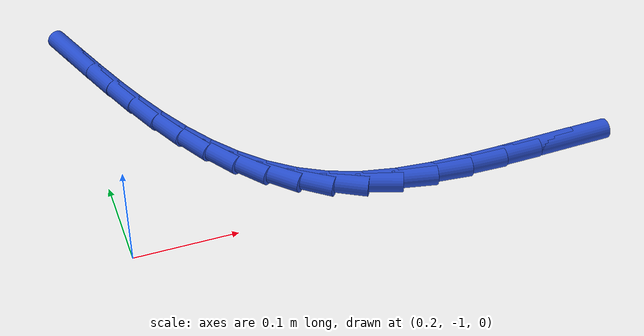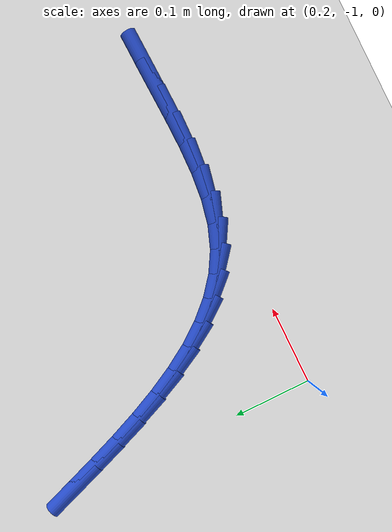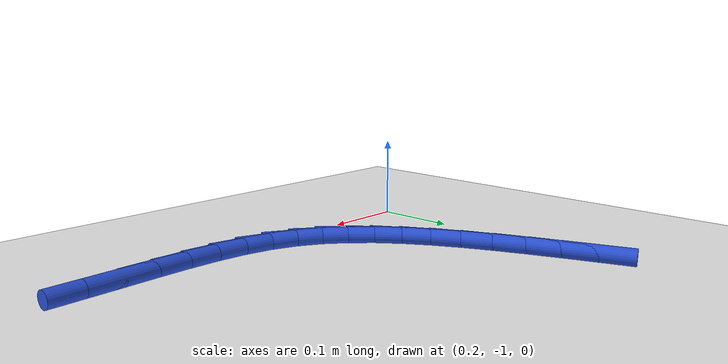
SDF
<sdf version="1.6">
 <world name="default">
  <model name="ground_plane">
   <static>1</static>
   <link name="link">
    <collision name="collision">
     <geometry><plane><normal>0 0 1</normal><size>100 100</size></plane></geometry>
     <surface><friction><ode><mu>100</mu><mu2>50</mu2></ode></friction></surface>
    </collision>
    <visual name="visual">
     <cast_shadows>0</cast_shadows>
     <geometry><plane><normal>0 0 1</normal><size>100 100</size></plane></geometry>
     <material>
      <script><uri>file://media/materials/scripts/gazebo.material</uri><name>Gazebo/WhiteGlow</name></script>
     </material>
    </visual>
   </link>
  </model>
  <model name="line">
   <link name="link_183">
    <pose>0.6492458676823791 -0.9888403708924518 0.01 0 1.57 0.03428825083666882</pose>
    <collision name="collision">
     <geometry><cylinder><radius>0.01</radius><length>0.08</length></cylinder></geometry>
    </collision>
    <visual name="visual">
     <material>
      <script><name>Gazebo/Blue</name><uri>file://media/materials/scripts/gazebo.material</uri></script>
     </material>
     <geometry><cylinder><radius>0.01</radius><length>0.08</length></cylinder></geometry>
    </visual>
   </link>
   <link name="link_184">
    <pose>0.6102170524285628 -0.990179125391672 0.01 0 1.57 0.03857880957535048</pose>
    <collision name="collision">
     <geometry><cylinder><radius>0.01</radius><length>0.08</length></cylinder></geometry>
    </collision>
    <visual name="visual">
     <material>
      <script><name>Gazebo/Blue</name><uri>file://media/materials/scripts/gazebo.material</uri></script>
     </material>
     <geometry><cylinder><radius>0.01</radius><length>0.08</length></cylinder></geometry>
    </visual>
   </link>
   <link name="link_185">
    <pose>0.5713773164902005 -0.9916782599751337 0.01 0 1.57 0.02001904037055023</pose>
    <collision name="collision">
     <geometry><cylinder><radius>0.01</radius><length>0.08</length></cylinder></geometry>
    </collision>
    <visual name="visual">
     <material>
      <script><name>Gazebo/Blue</name><uri>file://media/materials/scripts/gazebo.material</uri></script>
     </material>
     <geometry><cylinder><radius>0.01</radius><length>0.08</length></cylinder></geometry>
    </visual>
   </link>
   <link name="link_186">
    <pose>0.5332447967662048 -0.9924417384206881 0.01 0 1.57 -0.02351992562575336</pose>
    <collision name="collision">
     <geometry><cylinder><radius>0.01</radius><length>0.08</length></cylinder></geometry>
    </collision>
    <visual name="visual">
     <material>
      <script><name>Gazebo/Blue</name><uri>file://media/materials/scripts/gazebo.material</uri></script>
     </material>
     <geometry><cylinder><radius>0.01</radius><length>0.08</length></cylinder></geometry>
    </visual>
   </link>
   <link name="link_187">
    <pose>0.4963376301554926 -0.9915735245061873 0.01 0 1.57 -0.09627671990491682</pose>
    <collision name="collision">
     <geometry><cylinder><radius>0.01</radius><length>0.08</length></cylinder></geometry>
    </collision>
    <visual name="visual">
     <material>
      <script><name>Gazebo/Blue</name><uri>file://media/materials/scripts/gazebo.material</uri></script>
     </material>
     <geometry><cylinder><radius>0.01</radius><length>0.08</length></cylinder></geometry>
    </visual>
   </link>
   <link name="link_188">
    <pose>0.46117395355697693 -0.9881775820094831 0.01 0 1.57 -0.20437897009216918</pose>
    <collision name="collision">
     <geometry><cylinder><radius>0.01</radius><length>0.08</length></cylinder></geometry>
    </collision>
    <visual name="visual">
     <material>
      <script><name>Gazebo/Blue</name><uri>file://media/materials/scripts/gazebo.material</uri></script>
     </material>
     <geometry><cylinder><radius>0.01</radius><length>0.08</length></cylinder></geometry>
    </visual>
   </link>
   <link name="link_189">
    <pose>0.42827190386957237 -0.9813578747084277 0.01 0 1.57 -0.3532420131715201</pose>
    <collision name="collision">
     <geometry><cylinder><radius>0.01</radius><length>0.08</length></cylinder></geometry>
    </collision>
    <visual name="visual">
     <material>
      <script><name>Gazebo/Blue</name><uri>file://media/materials/scripts/gazebo.material</uri></script>
     </material>
     <geometry><cylinder><radius>0.01</radius><length>0.08</length></cylinder></geometry>
    </visual>
   </link>
   <link name="link_190">
    <pose>0.39813340623831034 -0.9702456039235727 0.01 0 1.57 -0.5209785789007711</pose>
    <collision name="collision">
     <geometry><cylinder><radius>0.01</radius><length>0.08</length></cylinder></geometry>
    </collision>
    <visual name="visual">
     <material>
      <script><name>Gazebo/Blue</name><uri>file://media/materials/scripts/gazebo.material</uri></script>
     </material>
     <geometry><cylinder><radius>0.01</radius><length>0.08</length></cylinder></geometry>
    </visual>
   </link>
   <link name="link_191">
    <pose>0.3708822848556088 -0.9546072224675012 0.01 0 1.57 -0.676252452357826</pose>
    <collision name="collision">
     <geometry><cylinder><radius>0.01</radius><length>0.08</length></cylinder></geometry>
    </collision>
    <visual name="visual">
     <material>
      <script><name>Gazebo/Blue</name><uri>file://media/materials/scripts/gazebo.material</uri></script>
     </material>
     <geometry><cylinder><radius>0.01</radius><length>0.08</length></cylinder></geometry>
    </visual>
   </link>
   <link name="link_192">
    <pose>0.3462613340311727 -0.9348493555718945 0.01 0 1.57 -0.8111590725595785</pose>
    <collision name="collision">
     <geometry><cylinder><radius>0.01</radius><length>0.08</length></cylinder></geometry>
    </collision>
    <visual name="visual">
     <material>
      <script><name>Gazebo/Blue</name><uri>file://media/materials/scripts/gazebo.material</uri></script>
     </material>
     <geometry><cylinder><radius>0.01</radius><length>0.08</length></cylinder></geometry>
    </visual>
   </link>
   <link name="link_193">
    <pose>0.3239965505238724 -0.9114068502149197 0.01 0 1.57 -0.9233889580162365</pose>
    <collision name="collision">
     <geometry><cylinder><radius>0.01</radius><length>0.08</length></cylinder></geometry>
    </collision>
    <visual name="visual">
     <material>
      <script><name>Gazebo/Blue</name><uri>file://media/materials/scripts/gazebo.material</uri></script>
     </material>
     <geometry><cylinder><radius>0.01</radius><length>0.08</length></cylinder></geometry>
    </visual>
   </link>
   <link name="link_194">
    <pose>0.3038139310925782 -0.8847145533747437 0.01 0 1.57 -1.0138453421815548</pose>
    <collision name="collision">
     <geometry><cylinder><radius>0.01</radius><length>0.08</length></cylinder></geometry>
    </collision>
    <visual name="visual">
     <material>
      <script><name>Gazebo/Blue</name><uri>file://media/materials/scripts/gazebo.material</uri></script>
     </material>
     <geometry><cylinder><radius>0.01</radius><length>0.08</length></cylinder></geometry>
    </visual>
   </link>
   <link name="link_195">
    <pose>0.28543947249616003 -0.8552073120295324 0.01 0 1.57 -1.0849075975734637</pose>
    <collision name="collision">
     <geometry><cylinder><radius>0.01</radius><length>0.08</length></cylinder></geometry>
    </collision>
    <visual name="visual">
     <material>
      <script><name>Gazebo/Blue</name><uri>file://media/materials/scripts/gazebo.material</uri></script>
     </material>
     <geometry><cylinder><radius>0.01</radius><length>0.08</length></cylinder></geometry>
    </visual>
   </link>
   <link name="link_196">
    <pose>0.26859917149348916 -0.8233199731574548 0.01 0 1.57 -1.1392391533260193</pose>
    <collision name="collision">
     <geometry><cylinder><radius>0.01</radius><length>0.08</length></cylinder></geometry>
    </collision>
    <visual name="visual">
     <material>
      <script><name>Gazebo/Blue</name><uri>file://media/materials/scripts/gazebo.material</uri></script>
     </material>
     <geometry><cylinder><radius>0.01</radius><length>0.08</length></cylinder></geometry>
    </visual>
   </link>
   <link name="link_197">
    <pose>0.2530190248434354 -0.7894873837366767 0.01 0 1.57 -1.1791978406462265</pose>
    <collision name="collision">
     <geometry><cylinder><radius>0.01</radius><length>0.08</length></cylinder></geometry>
    </collision>
    <visual name="visual">
     <material>
      <script><name>Gazebo/Blue</name><uri>file://media/materials/scripts/gazebo.material</uri></script>
     </material>
     <geometry><cylinder><radius>0.01</radius><length>0.08</length></cylinder></geometry>
    </visual>
   </link>
   <link name="link_198">
    <pose>0.23842502930486908 -0.7541443907453654 0.01 0 1.57 -1.206622810183177</pose>
    <collision name="collision">
     <geometry><cylinder><radius>0.01</radius><length>0.08</length></cylinder></geometry>
    </collision>
    <visual name="visual">
     <material>
      <script><name>Gazebo/Blue</name><uri>file://media/materials/scripts/gazebo.material</uri></script>
     </material>
     <geometry><cylinder><radius>0.01</radius><length>0.08</length></cylinder></geometry>
    </visual>
   </link>
   <link name="link_199">
    <pose>0.22454318163666026 -0.717725841161687 0.01 0 1.57 -1.2227975007209178</pose>
    <collision name="collision">
     <geometry><cylinder><radius>0.01</radius><length>0.08</length></cylinder></geometry>
    </collision>
    <visual name="visual">
     <material>
      <script><name>Gazebo/Blue</name><uri>file://media/materials/scripts/gazebo.material</uri></script>
     </material>
     <geometry><cylinder><radius>0.01</radius><length>0.08</length></cylinder></geometry>
    </visual>
   </link>
   <link name="link_200">
    <pose>0.2110994785976799 -0.6806665819638104 0.01 0 1.57 -1.228472504260697</pose>
    <collision name="collision">
     <geometry><cylinder><radius>0.01</radius><length>0.08</length></cylinder></geometry>
    </collision>
    <visual name="visual">
     <material>
      <script><name>Gazebo/Blue</name><uri>file://media/materials/scripts/gazebo.material</uri></script>
     </material>
     <geometry><cylinder><radius>0.01</radius><length>0.08</length></cylinder></geometry>
    </visual>
   </link>
  </model>
 </world>
</sdf>
